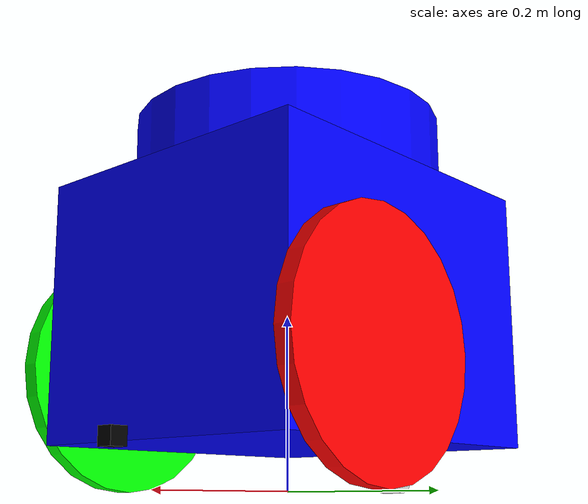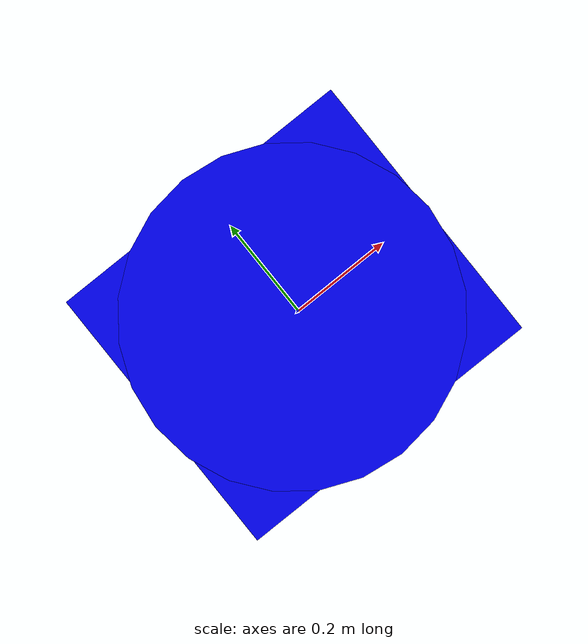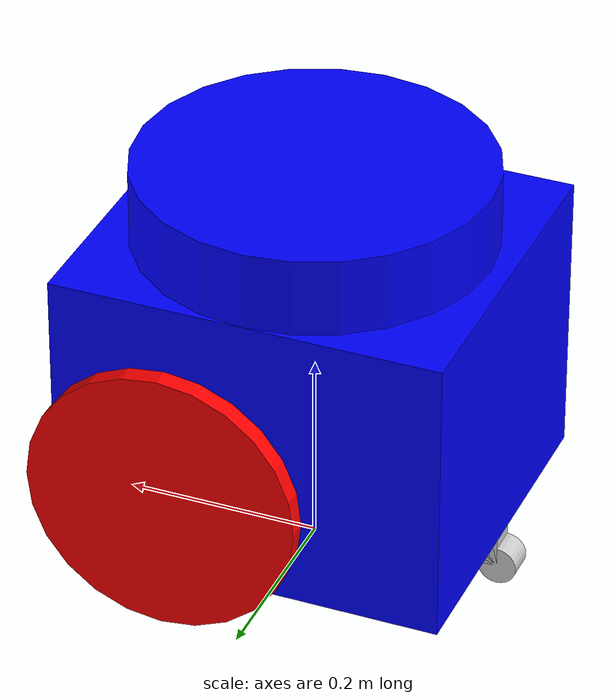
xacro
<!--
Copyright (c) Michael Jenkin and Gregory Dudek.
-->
<?xml version="1.0"?>

<robot name="$(arg name)" xmlns:xacro="http://www.ros.org/wiki/xacro">

  <!-- Define the robot -->
  <xacro:property name="robot_base_width" value="0.36" />
  <xacro:property name="robot_base_length" value="0.4" />
  <xacro:property name="robot_base_height" value="0.3" />
  <xacro:property name="robot_base_mass" value="4.5" />
  <xacro:property name="robot_sonar_radius" value="0.18" />
  <xacro:property name="robot_sonar_height" value="0.08" />
  <xacro:property name="robot_wheel_zoffset" value="-0.06" />
  <xacro:property name="robot_wheel_xoffset" value="0.08" />
  <xacro:property name="robot_wheel_radius" value="0.14" />
  <xacro:property name="robot_wheel_width" value="0.02" />
  <xacro:property name="robot_caster_link_height" value="0.03" />
  <xacro:property name="robot_caster_link_width" value="0.03" />
  <xacro:property name="robot_caster_link_length" value="0.05" />
  <xacro:property name="robot_caster_link_offset" value="-0.025" />
  <xacro:property name="robot_caster_joint_offset" value="-0.15" />
  <xacro:property name="robot_caster_wheel_radius" value="0.02" />
  <xacro:property name="robot_camera_length" value="0.02" />
  <xacro:property name="robot_camera_width" value="0.02" />
  <xacro:property name="robot_camera_height" value="0.02" />
  <xacro:property name="robot_camera_offset" value="0.04" />

  <!-- Import colors defined externally -->
  <xacro:include filename="$(find cpmr_ch6)/colors.xacro" />

  <!-- Define macros to make moments of inertia easier -->
  <xacro:macro name="I_cylinder" params="m r h">
    <inertial>
      <mass value="${m}" />
      <inertia  ixx="${m*(3*r*r+h*h)/12}" iyy="${m*(3*r*r+h*h)/12}" izz="${m*r*r/2}"
              ixy = "0" ixz = "0" iyz = "0" />
    </inertial>
  </xacro:macro>
  <xacro:macro name="I_cuboid" params="m x y z">
    <inertial>
      <mass value="${m}" />
      <inertia  ixx="${m*(y*y+z*z)/12}" iyy="${m*(x*x+z*z)/12}" izz="${m*(x*x+z*z)/12}"
                ixy = "0" ixz = "0" iyz = "0" />
    </inertial>
  </xacro:macro>

  <!-- robot footprint -->
  <link name="base_footprint">
  </link>

  <!-- Base -->
  <gazebo reference="base_link">
    <material>Gazebo/Blue</material>
  </gazebo>
  <link name="base_link">
    <visual>
      <geometry>
        <box size="${robot_base_length} ${robot_base_width} ${robot_base_height}" />
      </geometry>
      <material name="blue"/>
    </visual>
    <collision>
      <geometry>
        <box size="${robot_base_length} ${robot_base_width} ${robot_base_height}" />
      </geometry>
    </collision>
    <xacro:I_cuboid m="8.4" x="${robot_base_length}" y="${robot_base_width}" z="${robot_base_height}" />
  </link>

  <!-- Sonar unit -->
  <gazebo reference="sonar_link">
    <material>Gazebo/Blue</material>
  </gazebo>
  <link name="sonar_link">
    <visual>
      <geometry>
        <cylinder length="${robot_sonar_height}" radius="${robot_sonar_radius}" />
      </geometry>
      <material name="blue"/>
    </visual>
    <collision>
      <geometry>
        <cylinder length="${robot_sonar_height}" radius="${robot_sonar_radius}" />
      </geometry>
    </collision>
    <xacro:I_cylinder m="8.4" r="${robot_sonar_radius}" h="${robot_sonar_height}" />
  </link>

  <joint name="base_joint" type="fixed">
    <origin xyz="0.0 0.0 ${robot_wheel_radius-robot_wheel_zoffset}" rpy="0.0 0.0 0.0" />
    <parent link="base_footprint" />
    <child link="base_link" />
    <axis xyz="0 0 1" />
  </joint>

  <joint name="sonar_joint" type="fixed">
    <origin xyz="0.0 0.0 ${robot_base_height/2+robot_sonar_height/2}" rpy="0.0 0.0 0.0" />
    <parent link="base_link" />
    <child link="sonar_link" />
    <axis xyz="0 0 1" />
  </joint>

  <!-- Cameraunit -->
  <gazebo reference="camera_link">
    <material>Gazebo/Red</material>
  </gazebo>
  <link name="camera_link">
    <visual>
      <geometry>
        <box size="${robot_camera_length} ${robot_camera_width} ${robot_camera_height}" />
      </geometry>
      <material>
        <color rgba="0 0 0 0"/>
      </material>
    </visual>
    <collision>
      <geometry>
        <box size="${robot_camera_length} ${robot_camera_width} ${robot_camera_height}" />
      </geometry>
    </collision>
    <xacro:I_cuboid m="0.01" x="${robot_camera_length}" y="${robot_camera_width}" z="${robot_camera_height}" />
  </link>

  <joint name="camera_joint" type="fixed">
    <origin xyz="${robot_base_length/2+robot_camera_length/2+robot_camera_offset} 0.0 ${-robot_base_height/2}" rpy="0.0 1.57 0.0" />
    <parent link="base_link" />
    <child link="camera_link" />
    <axis xyz="0 0 1" />
  </joint>

  <gazebo reference="camera_link">
    <sensor type="camera" name="camera">
      <visualize>true</visualize>
      <camera>
        <horizontal_fov>${160 * 3.1415/180}</horizontal_fov>
        <image>
          <format>R8G8B8</format>
          <width>640</width>
          <height>480</height>
        </image>
        <clip>
          <near>0.01</near>
          <far>50.0</far>
        </clip>
      </camera>
      <plugin name="camera_controller" filename="libgazebo_ros_camera.so">
        <camera_name>mycamera</camera_name>
        <frame_name>camera_link</frame_name>
      </plugin>
    </sensor>
  </gazebo>

  <!-- Left wheel -->
  <gazebo reference="left_wheel_link">
    <material>Gazebo/Red</material>
  </gazebo>
  <link name="left_wheel_link">
    <visual>
      <geometry>
        <cylinder length="${robot_wheel_width}" radius="${robot_wheel_radius}" />
      </geometry>
      <material name="red" />
    </visual>
    <collision>
      <geometry>
        <cylinder length="${robot_wheel_width}" radius="${robot_wheel_radius}" />
      </geometry>
    </collision>
    <xacro:I_cylinder m="0.1" r="${robot_wheel_radius}" h="${robot_wheel_width}" />
  </link>

  <joint name="left_wheel_joint" type="continuous">
    <axis xyz="0 0 1" />
    <parent link="base_link" />
    <child link="left_wheel_link" />
    <origin rpy="-1.5708 0 0" xyz="${robot_wheel_xoffset} ${robot_base_width/2+robot_wheel_width/2} ${robot_wheel_zoffset}" />
  </joint>

  <!-- Right wheel -->
  <gazebo reference="right_wheel_link">
    <material>Gazebo/Green</material>
  </gazebo>
  <link name="right_wheel_link">
    <visual>
      <geometry>
        <cylinder length="${robot_wheel_width}" radius="${robot_wheel_radius}" />
      </geometry>
      <material name="green" />
    </visual>
    <collision>
      <geometry>
        <cylinder length="${robot_wheel_width}" radius="${robot_wheel_radius}" />
      </geometry>
    </collision>
    <xacro:I_cylinder m="0.1" r="${robot_wheel_radius}" h="${robot_wheel_width}" />
  </link>

  <joint name="right_wheel_joint" type="continuous">
    <axis xyz="0 0 1" />
    <parent link="base_link" />
    <child link="right_wheel_link" />
    <origin rpy="-1.5708 0 0" xyz="${robot_wheel_xoffset} ${-robot_base_width/2-robot_wheel_width/2} ${robot_wheel_zoffset}" />
  </joint>

  <!-- Caster 'wheel' structure -->
  <gazebo reference="caster_link">
    <material>Gazebo/Silver</material>
  </gazebo>

  <link name="caster_link">
    <visual>
      <origin xyz="${robot_caster_link_length/2} 0 0" rpy="0 0 0" />
      <geometry>
        <box size="${robot_caster_link_length} ${robot_caster_link_width} ${robot_caster_link_height}" />
      </geometry>
      <material name="silver"/>
    </visual>
    <collision>
      <origin xyz="${robot_caster_link_length/2} 0 0" rpy="0 0 0" />
      <geometry>
        <box size="${robot_caster_link_length} ${robot_caster_link_width} ${robot_caster_link_height}" />
      </geometry>
    </collision>
    <xacro:I_cuboid m="0.1" x="${robot_caster_link_length}" y="${robot_caster_link_width}" z="${robot_caster_link_height}" />
  </link>

  <joint name="caster_joint" type="continuous">
    <axis xyz="0 0 1" />
    <parent link="base_link" />
    <child link="caster_link" />
    <origin rpy="0 0 3.1415" xyz="${robot_caster_joint_offset} 0 ${-robot_base_height/2-robot_caster_link_height/2}" />
  </joint>

  <!-- caster wheel -->
  <gazebo reference="caster_wheel_link">
    <material>Gazebo/Silver</material>
  </gazebo>
  <link name="caster_wheel_link">
    <visual>
      <geometry>
        <cylinder length="${robot_caster_link_height}" radius="${robot_caster_wheel_radius}" />
      </geometry>
      <material name="silver" />
    </visual>
    <collision>
      <geometry>
        <cylinder length="${robot_caster_link_height}" radius="${robot_caster_wheel_radius}" />
      </geometry>
    </collision>
    <xacro:I_cylinder m="0.1" r="${robot_caster_wheel_radius}" h="${robot_caster_link_height}" />
  </link>

  <joint name="caster_wheel_joint" type="continuous">
    <axis xyz="0 0 1" />
    <child link="caster_wheel_link" />
    <parent link="caster_link" />
    <origin rpy="1.5708 0 0" xyz="${robot_caster_link_length} 0 ${-robot_caster_link_height/2}" />
  </joint>

<gazebo>
    <plugin name="joint_state_publisher" filename="libgazebo_ros_joint_state_publisher.so">
      <update_rate>100</update_rate>
      <joint_name>caster_wheel_joint</joint_name>
      <joint_name>caster_joint</joint_name>
      <joint_name>left_wheel_joint</joint_name>
      <joint_name>right_wheel_joint</joint_name>
    </plugin>
  </gazebo>

  <gazebo>
    <plugin name="differential_drive_controller" filename="libgazebo_ros_diff_drive.so">
      <update_rate>20</update_rate>
      <left_joint>left_wheel_joint</left_joint>
      <right_joint>right_wheel_joint</right_joint>
      <robotBaseFrame>base_footprint</robotBaseFrame>
      <wheel_separation>${robot_base_width+robot_wheel_width}</wheel_separation>
      <wheel_diameter>${2*robot_wheel_radius}</wheel_diameter>
      <publish_odom>true</publish_odom>
      <publish_odom_tf>true</publish_odom_tf>
      <publish_wheel_tf>true</publish_wheel_tf>
      <odometry_frame>odom</odometry_frame>
      <robot_base_frame>base_footprint</robot_base_frame>
      <command_topic>cmd_vel</command_topic>
    </plugin>
  </gazebo>
</robot>

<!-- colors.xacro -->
<robot>
  <material name="red">
    <color rgba="1 0 0 1"/>
  </material>
  <material name="green">
    <color rgba="0 1 0 1"/>
  </material>
  <material name="blue">
    <color rgba="0 0 1 1"/>
  </material>
  <material name="black">
    <color rgba="0 0 0 1"/>
  </material>
  <material name="silver">
    <color rgba="0.8 0.8 0.8 1"/>
  </material>
  <material name="grey">
    <color rgba="0.5 0.5 0.5 1"/>
  </material>
  <material name="clear">
    <color rgba="0.0 0.0 0.0 0"/>
  </material>
</robot>
